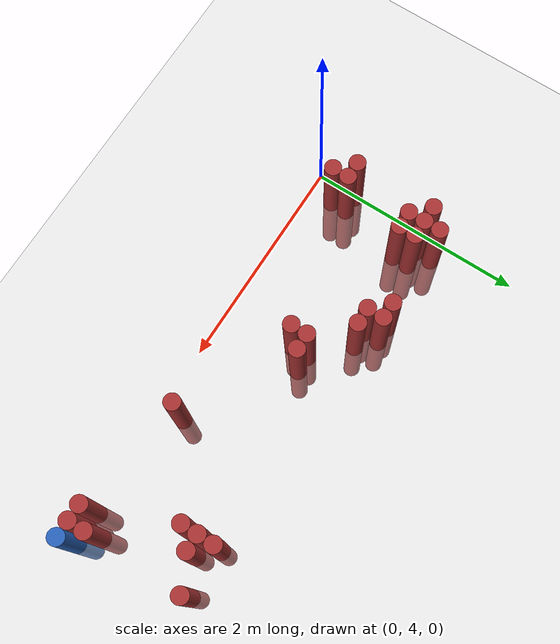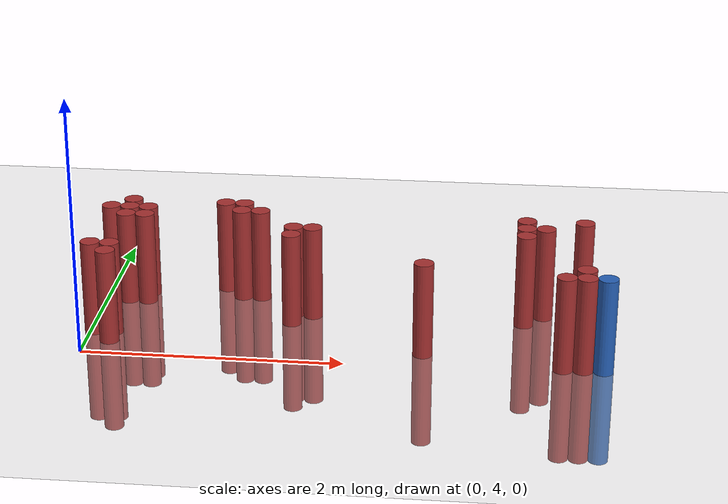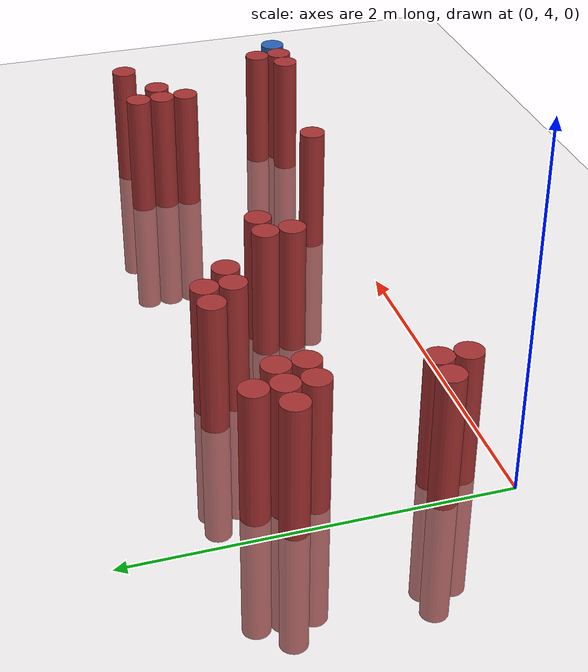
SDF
<sdf version="1.6">
 <world name="default">
  <model name="ground_plane">
   <static>1</static>
   <link name="link">
    <collision name="collision">
     <geometry><plane><normal>0 0 1</normal><size>100 100</size></plane></geometry>
     <surface><friction><ode><mu>100</mu><mu2>50</mu2></ode></friction></surface>
    </collision>
    <visual name="visual">
     <cast_shadows>0</cast_shadows>
     <geometry><plane><normal>0 0 1</normal><size>100 100</size></plane></geometry>
     <material>
      <script><uri>file://media/materials/scripts/gazebo.material</uri><name>Gazebo/Grey</name></script>
     </material>
    </visual>
   </link>
  </model>
  <model name="unit_cylinder_168">
   <static>1</static>
   <pose>3.925000 4.075000 0.000000 0.000000 0.000000 0.000000</pose>
   <link name="link">
    <inertial>
     <mass>1</mass>
     <inertia><ixx>0.145833</ixx><ixy>0</ixy><ixz>0</ixz><iyy>0.145833</iyy><iyz>0</iyz><izz>0.125</izz></inertia>
    </inertial>
    <collision name="collision">
     <geometry><cylinder><radius>0.075000</radius><length>1.5</length></cylinder></geometry>
    </collision>
    <visual name="visual">
     <geometry><cylinder><radius>0.075000</radius><length>1.5</length></cylinder></geometry>
     <material>
      <ambient>0.152000 0.379000 0.720000 1</ambient>
      <diffuse>0.152000 0.379000 0.720000 1</diffuse>
     </material>
     <material>
      <script><name>Gazebo/Grey</name><uri>file://media/materials/scripts/gazebo.material</uri></script>
     </material>
    </visual>
   </link>
  </model>
  <model name="unit_cylinder_328">
   <static>1</static>
   <pose>0.025000 4.375000 0.000000 0.000000 0.000000 0.000000</pose>
   <link name="link">
    <inertial>
     <mass>1</mass>
     <inertia><ixx>0.145833</ixx><ixy>0</ixy><ixz>0</ixz><iyy>0.145833</iyy><iyz>0</iyz><izz>0.125</izz></inertia>
    </inertial>
    <collision name="collision">
     <geometry><cylinder><radius>0.075000</radius><length>1.5</length></cylinder></geometry>
    </collision>
    <visual name="visual">
     <geometry><cylinder><radius>0.075000</radius><length>1.5</length></cylinder></geometry>
     <material>
      <ambient>0.648000 0.192000 0.192000 1</ambient>
      <diffuse>0.648000 0.192000 0.192000 1</diffuse>
     </material>
     <material>
      <script><name>Gazebo/Grey</name><uri>file://media/materials/scripts/gazebo.material</uri></script>
     </material>
    </visual>
   </link>
  </model>
  <model name="unit_cylinder_329">
   <static>1</static>
   <pose>0.025000 5.125000 0.000000 0.000000 0.000000 0.000000</pose>
   <link name="link">
    <inertial>
     <mass>1</mass>
     <inertia><ixx>0.145833</ixx><ixy>0</ixy><ixz>0</ixz><iyy>0.145833</iyy><iyz>0</iyz><izz>0.125</izz></inertia>
    </inertial>
    <collision name="collision">
     <geometry><cylinder><radius>0.075000</radius><length>1.5</length></cylinder></geometry>
    </collision>
    <visual name="visual">
     <geometry><cylinder><radius>0.075000</radius><length>1.5</length></cylinder></geometry>
     <material>
      <ambient>0.648000 0.192000 0.192000 1</ambient>
      <diffuse>0.648000 0.192000 0.192000 1</diffuse>
     </material>
     <material>
      <script><name>Gazebo/Grey</name><uri>file://media/materials/scripts/gazebo.material</uri></script>
     </material>
    </visual>
   </link>
  </model>
  <model name="unit_cylinder_334">
   <static>1</static>
   <pose>0.175000 4.225000 0.000000 0.000000 0.000000 0.000000</pose>
   <link name="link">
    <inertial>
     <mass>1</mass>
     <inertia><ixx>0.145833</ixx><ixy>0</ixy><ixz>0</ixz><iyy>0.145833</iyy><iyz>0</iyz><izz>0.125</izz></inertia>
    </inertial>
    <collision name="collision">
     <geometry><cylinder><radius>0.075000</radius><length>1.5</length></cylinder></geometry>
    </collision>
    <visual name="visual">
     <geometry><cylinder><radius>0.075000</radius><length>1.5</length></cylinder></geometry>
     <material>
      <ambient>0.648000 0.192000 0.192000 1</ambient>
      <diffuse>0.648000 0.192000 0.192000 1</diffuse>
     </material>
     <material>
      <script><name>Gazebo/Grey</name><uri>file://media/materials/scripts/gazebo.material</uri></script>
     </material>
    </visual>
   </link>
  </model>
  <model name="unit_cylinder_335">
   <static>1</static>
   <pose>0.175000 4.375000 0.000000 0.000000 0.000000 0.000000</pose>
   <link name="link">
    <inertial>
     <mass>1</mass>
     <inertia><ixx>0.145833</ixx><ixy>0</ixy><ixz>0</ixz><iyy>0.145833</iyy><iyz>0</iyz><izz>0.125</izz></inertia>
    </inertial>
    <collision name="collision">
     <geometry><cylinder><radius>0.075000</radius><length>1.5</length></cylinder></geometry>
    </collision>
    <visual name="visual">
     <geometry><cylinder><radius>0.075000</radius><length>1.5</length></cylinder></geometry>
     <material>
      <ambient>0.648000 0.192000 0.192000 1</ambient>
      <diffuse>0.648000 0.192000 0.192000 1</diffuse>
     </material>
     <material>
      <script><name>Gazebo/Grey</name><uri>file://media/materials/scripts/gazebo.material</uri></script>
     </material>
    </visual>
   </link>
  </model>
  <model name="unit_cylinder_336">
   <static>1</static>
   <pose>0.175000 4.975000 0.000000 0.000000 0.000000 0.000000</pose>
   <link name="link">
    <inertial>
     <mass>1</mass>
     <inertia><ixx>0.145833</ixx><ixy>0</ixy><ixz>0</ixz><iyy>0.145833</iyy><iyz>0</iyz><izz>0.125</izz></inertia>
    </inertial>
    <collision name="collision">
     <geometry><cylinder><radius>0.075000</radius><length>1.5</length></cylinder></geometry>
    </collision>
    <visual name="visual">
     <geometry><cylinder><radius>0.075000</radius><length>1.5</length></cylinder></geometry>
     <material>
      <ambient>0.648000 0.192000 0.192000 1</ambient>
      <diffuse>0.648000 0.192000 0.192000 1</diffuse>
     </material>
     <material>
      <script><name>Gazebo/Grey</name><uri>file://media/materials/scripts/gazebo.material</uri></script>
     </material>
    </visual>
   </link>
  </model>
  <model name="unit_cylinder_337">
   <static>1</static>
   <pose>0.175000 5.125000 0.000000 0.000000 0.000000 0.000000</pose>
   <link name="link">
    <inertial>
     <mass>1</mass>
     <inertia><ixx>0.145833</ixx><ixy>0</ixy><ixz>0</ixz><iyy>0.145833</iyy><iyz>0</iyz><izz>0.125</izz></inertia>
    </inertial>
    <collision name="collision">
     <geometry><cylinder><radius>0.075000</radius><length>1.5</length></cylinder></geometry>
    </collision>
    <visual name="visual">
     <geometry><cylinder><radius>0.075000</radius><length>1.5</length></cylinder></geometry>
     <material>
      <ambient>0.648000 0.192000 0.192000 1</ambient>
      <diffuse>0.648000 0.192000 0.192000 1</diffuse>
     </material>
     <material>
      <script><name>Gazebo/Grey</name><uri>file://media/materials/scripts/gazebo.material</uri></script>
     </material>
    </visual>
   </link>
  </model>
  <model name="unit_cylinder_338">
   <static>1</static>
   <pose>0.175000 5.275000 0.000000 0.000000 0.000000 0.000000</pose>
   <link name="link">
    <inertial>
     <mass>1</mass>
     <inertia><ixx>0.145833</ixx><ixy>0</ixy><ixz>0</ixz><iyy>0.145833</iyy><iyz>0</iyz><izz>0.125</izz></inertia>
    </inertial>
    <collision name="collision">
     <geometry><cylinder><radius>0.075000</radius><length>1.5</length></cylinder></geometry>
    </collision>
    <visual name="visual">
     <geometry><cylinder><radius>0.075000</radius><length>1.5</length></cylinder></geometry>
     <material>
      <ambient>0.648000 0.192000 0.192000 1</ambient>
      <diffuse>0.648000 0.192000 0.192000 1</diffuse>
     </material>
     <material>
      <script><name>Gazebo/Grey</name><uri>file://media/materials/scripts/gazebo.material</uri></script>
     </material>
    </visual>
   </link>
  </model>
  <model name="unit_cylinder_340">
   <static>1</static>
   <pose>0.325000 4.975000 0.000000 0.000000 0.000000 0.000000</pose>
   <link name="link">
    <inertial>
     <mass>1</mass>
     <inertia><ixx>0.145833</ixx><ixy>0</ixy><ixz>0</ixz><iyy>0.145833</iyy><iyz>0</iyz><izz>0.125</izz></inertia>
    </inertial>
    <collision name="collision">
     <geometry><cylinder><radius>0.075000</radius><length>1.5</length></cylinder></geometry>
    </collision>
    <visual name="visual">
     <geometry><cylinder><radius>0.075000</radius><length>1.5</length></cylinder></geometry>
     <material>
      <ambient>0.648000 0.192000 0.192000 1</ambient>
      <diffuse>0.648000 0.192000 0.192000 1</diffuse>
     </material>
     <material>
      <script><name>Gazebo/Grey</name><uri>file://media/materials/scripts/gazebo.material</uri></script>
     </material>
    </visual>
   </link>
  </model>
  <model name="unit_cylinder_341">
   <static>1</static>
   <pose>0.325000 5.125000 0.000000 0.000000 0.000000 0.000000</pose>
   <link name="link">
    <inertial>
     <mass>1</mass>
     <inertia><ixx>0.145833</ixx><ixy>0</ixy><ixz>0</ixz><iyy>0.145833</iyy><iyz>0</iyz><izz>0.125</izz></inertia>
    </inertial>
    <collision name="collision">
     <geometry><cylinder><radius>0.075000</radius><length>1.5</length></cylinder></geometry>
    </collision>
    <visual name="visual">
     <geometry><cylinder><radius>0.075000</radius><length>1.5</length></cylinder></geometry>
     <material>
      <ambient>0.648000 0.192000 0.192000 1</ambient>
      <diffuse>0.648000 0.192000 0.192000 1</diffuse>
     </material>
     <material>
      <script><name>Gazebo/Grey</name><uri>file://media/materials/scripts/gazebo.material</uri></script>
     </material>
    </visual>
   </link>
  </model>
  <model name="unit_cylinder_347">
   <static>1</static>
   <pose>0.925000 5.275000 0.000000 0.000000 0.000000 0.000000</pose>
   <link name="link">
    <inertial>
     <mass>1</mass>
     <inertia><ixx>0.145833</ixx><ixy>0</ixy><ixz>0</ixz><iyy>0.145833</iyy><iyz>0</iyz><izz>0.125</izz></inertia>
    </inertial>
    <collision name="collision">
     <geometry><cylinder><radius>0.075000</radius><length>1.5</length></cylinder></geometry>
    </collision>
    <visual name="visual">
     <geometry><cylinder><radius>0.075000</radius><length>1.5</length></cylinder></geometry>
     <material>
      <ambient>0.648000 0.192000 0.192000 1</ambient>
      <diffuse>0.648000 0.192000 0.192000 1</diffuse>
     </material>
     <material>
      <script><name>Gazebo/Grey</name><uri>file://media/materials/scripts/gazebo.material</uri></script>
     </material>
    </visual>
   </link>
  </model>
  <model name="unit_cylinder_354">
   <static>1</static>
   <pose>1.075000 5.125000 0.000000 0.000000 0.000000 0.000000</pose>
   <link name="link">
    <inertial>
     <mass>1</mass>
     <inertia><ixx>0.145833</ixx><ixy>0</ixy><ixz>0</ixz><iyy>0.145833</iyy><iyz>0</iyz><izz>0.125</izz></inertia>
    </inertial>
    <collision name="collision">
     <geometry><cylinder><radius>0.075000</radius><length>1.5</length></cylinder></geometry>
    </collision>
    <visual name="visual">
     <geometry><cylinder><radius>0.075000</radius><length>1.5</length></cylinder></geometry>
     <material>
      <ambient>0.648000 0.192000 0.192000 1</ambient>
      <diffuse>0.648000 0.192000 0.192000 1</diffuse>
     </material>
     <material>
      <script><name>Gazebo/Grey</name><uri>file://media/materials/scripts/gazebo.material</uri></script>
     </material>
    </visual>
   </link>
  </model>
  <model name="unit_cylinder_355">
   <static>1</static>
   <pose>1.075000 5.275000 0.000000 0.000000 0.000000 0.000000</pose>
   <link name="link">
    <inertial>
     <mass>1</mass>
     <inertia><ixx>0.145833</ixx><ixy>0</ixy><ixz>0</ixz><iyy>0.145833</iyy><iyz>0</iyz><izz>0.125</izz></inertia>
    </inertial>
    <collision name="collision">
     <geometry><cylinder><radius>0.075000</radius><length>1.5</length></cylinder></geometry>
    </collision>
    <visual name="visual">
     <geometry><cylinder><radius>0.075000</radius><length>1.5</length></cylinder></geometry>
     <material>
      <ambient>0.648000 0.192000 0.192000 1</ambient>
      <diffuse>0.648000 0.192000 0.192000 1</diffuse>
     </material>
     <material>
      <script><name>Gazebo/Grey</name><uri>file://media/materials/scripts/gazebo.material</uri></script>
     </material>
    </visual>
   </link>
  </model>
  <model name="unit_cylinder_360">
   <static>1</static>
   <pose>1.225000 5.125000 0.000000 0.000000 0.000000 0.000000</pose>
   <link name="link">
    <inertial>
     <mass>1</mass>
     <inertia><ixx>0.145833</ixx><ixy>0</ixy><ixz>0</ixz><iyy>0.145833</iyy><iyz>0</iyz><izz>0.125</izz></inertia>
    </inertial>
    <collision name="collision">
     <geometry><cylinder><radius>0.075000</radius><length>1.5</length></cylinder></geometry>
    </collision>
    <visual name="visual">
     <geometry><cylinder><radius>0.075000</radius><length>1.5</length></cylinder></geometry>
     <material>
      <ambient>0.648000 0.192000 0.192000 1</ambient>
      <diffuse>0.648000 0.192000 0.192000 1</diffuse>
     </material>
     <material>
      <script><name>Gazebo/Grey</name><uri>file://media/materials/scripts/gazebo.material</uri></script>
     </material>
    </visual>
   </link>
  </model>
  <model name="unit_cylinder_367">
   <static>1</static>
   <pose>1.525000 4.675000 0.000000 0.000000 0.000000 0.000000</pose>
   <link name="link">
    <inertial>
     <mass>1</mass>
     <inertia><ixx>0.145833</ixx><ixy>0</ixy><ixz>0</ixz><iyy>0.145833</iyy><iyz>0</iyz><izz>0.125</izz></inertia>
    </inertial>
    <collision name="collision">
     <geometry><cylinder><radius>0.075000</radius><length>1.5</length></cylinder></geometry>
    </collision>
    <visual name="visual">
     <geometry><cylinder><radius>0.075000</radius><length>1.5</length></cylinder></geometry>
     <material>
      <ambient>0.648000 0.192000 0.192000 1</ambient>
      <diffuse>0.648000 0.192000 0.192000 1</diffuse>
     </material>
     <material>
      <script><name>Gazebo/Grey</name><uri>file://media/materials/scripts/gazebo.material</uri></script>
     </material>
    </visual>
   </link>
  </model>
  <model name="unit_cylinder_368">
   <static>1</static>
   <pose>1.525000 4.825000 0.000000 0.000000 0.000000 0.000000</pose>
   <link name="link">
    <inertial>
     <mass>1</mass>
     <inertia><ixx>0.145833</ixx><ixy>0</ixy><ixz>0</ixz><iyy>0.145833</iyy><iyz>0</iyz><izz>0.125</izz></inertia>
    </inertial>
    <collision name="collision">
     <geometry><cylinder><radius>0.075000</radius><length>1.5</length></cylinder></geometry>
    </collision>
    <visual name="visual">
     <geometry><cylinder><radius>0.075000</radius><length>1.5</length></cylinder></geometry>
     <material>
      <ambient>0.648000 0.192000 0.192000 1</ambient>
      <diffuse>0.648000 0.192000 0.192000 1</diffuse>
     </material>
     <material>
      <script><name>Gazebo/Grey</name><uri>file://media/materials/scripts/gazebo.material</uri></script>
     </material>
    </visual>
   </link>
  </model>
  <model name="unit_cylinder_370">
   <static>1</static>
   <pose>1.675000 4.825000 0.000000 0.000000 0.000000 0.000000</pose>
   <link name="link">
    <inertial>
     <mass>1</mass>
     <inertia><ixx>0.145833</ixx><ixy>0</ixy><ixz>0</ixz><iyy>0.145833</iyy><iyz>0</iyz><izz>0.125</izz></inertia>
    </inertial>
    <collision name="collision">
     <geometry><cylinder><radius>0.075000</radius><length>1.5</length></cylinder></geometry>
    </collision>
    <visual name="visual">
     <geometry><cylinder><radius>0.075000</radius><length>1.5</length></cylinder></geometry>
     <material>
      <ambient>0.648000 0.192000 0.192000 1</ambient>
      <diffuse>0.648000 0.192000 0.192000 1</diffuse>
     </material>
     <material>
      <script><name>Gazebo/Grey</name><uri>file://media/materials/scripts/gazebo.material</uri></script>
     </material>
    </visual>
   </link>
  </model>
  <model name="unit_cylinder_386">
   <static>1</static>
   <pose>2.575000 4.225000 0.000000 0.000000 0.000000 0.000000</pose>
   <link name="link">
    <inertial>
     <mass>1</mass>
     <inertia><ixx>0.145833</ixx><ixy>0</ixy><ixz>0</ixz><iyy>0.145833</iyy><iyz>0</iyz><izz>0.125</izz></inertia>
    </inertial>
    <collision name="collision">
     <geometry><cylinder><radius>0.075000</radius><length>1.5</length></cylinder></geometry>
    </collision>
    <visual name="visual">
     <geometry><cylinder><radius>0.075000</radius><length>1.5</length></cylinder></geometry>
     <material>
      <ambient>0.648000 0.192000 0.192000 1</ambient>
      <diffuse>0.648000 0.192000 0.192000 1</diffuse>
     </material>
     <material>
      <script><name>Gazebo/Grey</name><uri>file://media/materials/scripts/gazebo.material</uri></script>
     </material>
    </visual>
   </link>
  </model>
  <model name="unit_cylinder_399">
   <static>1</static>
   <pose>3.325000 4.825000 0.000000 0.000000 0.000000 0.000000</pose>
   <link name="link">
    <inertial>
     <mass>1</mass>
     <inertia><ixx>0.145833</ixx><ixy>0</ixy><ixz>0</ixz><iyy>0.145833</iyy><iyz>0</iyz><izz>0.125</izz></inertia>
    </inertial>
    <collision name="collision">
     <geometry><cylinder><radius>0.075000</radius><length>1.5</length></cylinder></geometry>
    </collision>
    <visual name="visual">
     <geometry><cylinder><radius>0.075000</radius><length>1.5</length></cylinder></geometry>
     <material>
      <ambient>0.648000 0.192000 0.192000 1</ambient>
      <diffuse>0.648000 0.192000 0.192000 1</diffuse>
     </material>
     <material>
      <script><name>Gazebo/Grey</name><uri>file://media/materials/scripts/gazebo.material</uri></script>
     </material>
    </visual>
   </link>
  </model>
  <model name="unit_cylinder_400">
   <static>1</static>
   <pose>3.325000 4.975000 0.000000 0.000000 0.000000 0.000000</pose>
   <link name="link">
    <inertial>
     <mass>1</mass>
     <inertia><ixx>0.145833</ixx><ixy>0</ixy><ixz>0</ixz><iyy>0.145833</iyy><iyz>0</iyz><izz>0.125</izz></inertia>
    </inertial>
    <collision name="collision">
     <geometry><cylinder><radius>0.075000</radius><length>1.5</length></cylinder></geometry>
    </collision>
    <visual name="visual">
     <geometry><cylinder><radius>0.075000</radius><length>1.5</length></cylinder></geometry>
     <material>
      <ambient>0.648000 0.192000 0.192000 1</ambient>
      <diffuse>0.648000 0.192000 0.192000 1</diffuse>
     </material>
     <material>
      <script><name>Gazebo/Grey</name><uri>file://media/materials/scripts/gazebo.material</uri></script>
     </material>
    </visual>
   </link>
  </model>
  <model name="unit_cylinder_401">
   <static>1</static>
   <pose>3.325000 5.125000 0.000000 0.000000 0.000000 0.000000</pose>
   <link name="link">
    <inertial>
     <mass>1</mass>
     <inertia><ixx>0.145833</ixx><ixy>0</ixy><ixz>0</ixz><iyy>0.145833</iyy><iyz>0</iyz><izz>0.125</izz></inertia>
    </inertial>
    <collision name="collision">
     <geometry><cylinder><radius>0.075000</radius><length>1.5</length></cylinder></geometry>
    </collision>
    <visual name="visual">
     <geometry><cylinder><radius>0.075000</radius><length>1.5</length></cylinder></geometry>
     <material>
      <ambient>0.648000 0.192000 0.192000 1</ambient>
      <diffuse>0.648000 0.192000 0.192000 1</diffuse>
     </material>
     <material>
      <script><name>Gazebo/Grey</name><uri>file://media/materials/scripts/gazebo.material</uri></script>
     </material>
    </visual>
   </link>
  </model>
  <model name="unit_cylinder_407">
   <static>1</static>
   <pose>3.475000 4.975000 0.000000 0.000000 0.000000 0.000000</pose>
   <link name="link">
    <inertial>
     <mass>1</mass>
     <inertia><ixx>0.145833</ixx><ixy>0</ixy><ixz>0</ixz><iyy>0.145833</iyy><iyz>0</iyz><izz>0.125</izz></inertia>
    </inertial>
    <collision name="collision">
     <geometry><cylinder><radius>0.075000</radius><length>1.5</length></cylinder></geometry>
    </collision>
    <visual name="visual">
     <geometry><cylinder><radius>0.075000</radius><length>1.5</length></cylinder></geometry>
     <material>
      <ambient>0.648000 0.192000 0.192000 1</ambient>
      <diffuse>0.648000 0.192000 0.192000 1</diffuse>
     </material>
     <material>
      <script><name>Gazebo/Grey</name><uri>file://media/materials/scripts/gazebo.material</uri></script>
     </material>
    </visual>
   </link>
  </model>
  <model name="unit_cylinder_417">
   <static>1</static>
   <pose>3.625000 4.075000 0.000000 0.000000 0.000000 0.000000</pose>
   <link name="link">
    <inertial>
     <mass>1</mass>
     <inertia><ixx>0.145833</ixx><ixy>0</ixy><ixz>0</ixz><iyy>0.145833</iyy><iyz>0</iyz><izz>0.125</izz></inertia>
    </inertial>
    <collision name="collision">
     <geometry><cylinder><radius>0.075000</radius><length>1.5</length></cylinder></geometry>
    </collision>
    <visual name="visual">
     <geometry><cylinder><radius>0.075000</radius><length>1.5</length></cylinder></geometry>
     <material>
      <ambient>0.648000 0.192000 0.192000 1</ambient>
      <diffuse>0.648000 0.192000 0.192000 1</diffuse>
     </material>
     <material>
      <script><name>Gazebo/Grey</name><uri>file://media/materials/scripts/gazebo.material</uri></script>
     </material>
    </visual>
   </link>
  </model>
  <model name="unit_cylinder_434">
   <static>1</static>
   <pose>3.775000 4.075000 0.000000 0.000000 0.000000 0.000000</pose>
   <link name="link">
    <inertial>
     <mass>1</mass>
     <inertia><ixx>0.145833</ixx><ixy>0</ixy><ixz>0</ixz><iyy>0.145833</iyy><iyz>0</iyz><izz>0.125</izz></inertia>
    </inertial>
    <collision name="collision">
     <geometry><cylinder><radius>0.075000</radius><length>1.5</length></cylinder></geometry>
    </collision>
    <visual name="visual">
     <geometry><cylinder><radius>0.075000</radius><length>1.5</length></cylinder></geometry>
     <material>
      <ambient>0.648000 0.192000 0.192000 1</ambient>
      <diffuse>0.648000 0.192000 0.192000 1</diffuse>
     </material>
     <material>
      <script><name>Gazebo/Grey</name><uri>file://media/materials/scripts/gazebo.material</uri></script>
     </material>
    </visual>
   </link>
  </model>
  <model name="unit_cylinder_435">
   <static>1</static>
   <pose>3.775000 4.225000 0.000000 0.000000 0.000000 0.000000</pose>
   <link name="link">
    <inertial>
     <mass>1</mass>
     <inertia><ixx>0.145833</ixx><ixy>0</ixy><ixz>0</ixz><iyy>0.145833</iyy><iyz>0</iyz><izz>0.125</izz></inertia>
    </inertial>
    <collision name="collision">
     <geometry><cylinder><radius>0.075000</radius><length>1.5</length></cylinder></geometry>
    </collision>
    <visual name="visual">
     <geometry><cylinder><radius>0.075000</radius><length>1.5</length></cylinder></geometry>
     <material>
      <ambient>0.648000 0.192000 0.192000 1</ambient>
      <diffuse>0.648000 0.192000 0.192000 1</diffuse>
     </material>
     <material>
      <script><name>Gazebo/Grey</name><uri>file://media/materials/scripts/gazebo.material</uri></script>
     </material>
    </visual>
   </link>
  </model>
  <model name="unit_cylinder_436">
   <static>1</static>
   <pose>3.775000 5.125000 0.000000 0.000000 0.000000 0.000000</pose>
   <link name="link">
    <inertial>
     <mass>1</mass>
     <inertia><ixx>0.145833</ixx><ixy>0</ixy><ixz>0</ixz><iyy>0.145833</iyy><iyz>0</iyz><izz>0.125</izz></inertia>
    </inertial>
    <collision name="collision">
     <geometry><cylinder><radius>0.075000</radius><length>1.5</length></cylinder></geometry>
    </collision>
    <visual name="visual">
     <geometry><cylinder><radius>0.075000</radius><length>1.5</length></cylinder></geometry>
     <material>
      <ambient>0.648000 0.192000 0.192000 1</ambient>
      <diffuse>0.648000 0.192000 0.192000 1</diffuse>
     </material>
     <material>
      <script><name>Gazebo/Grey</name><uri>file://media/materials/scripts/gazebo.material</uri></script>
     </material>
    </visual>
   </link>
  </model>
  <model name="unit_cylinder_477">
   <static>1</static>
   <pose>3.925000 4.075000 0.000000 0.000000 0.000000 0.000000</pose>
   <link name="link">
    <inertial>
     <mass>1</mass>
     <inertia><ixx>0.145833</ixx><ixy>0</ixy><ixz>0</ixz><iyy>0.145833</iyy><iyz>0</iyz><izz>0.125</izz></inertia>
    </inertial>
    <collision name="collision">
     <geometry><cylinder><radius>0.075000</radius><length>1.5</length></cylinder></geometry>
    </collision>
    <visual name="visual">
     <geometry><cylinder><radius>0.075000</radius><length>1.5</length></cylinder></geometry>
     <material>
      <ambient>0.152000 0.379000 0.720000 1</ambient>
      <diffuse>0.152000 0.379000 0.720000 1</diffuse>
     </material>
     <material>
      <script><name>Gazebo/Grey</name><uri>file://media/materials/scripts/gazebo.material</uri></script>
     </material>
    </visual>
   </link>
  </model>
 </world>
</sdf>
